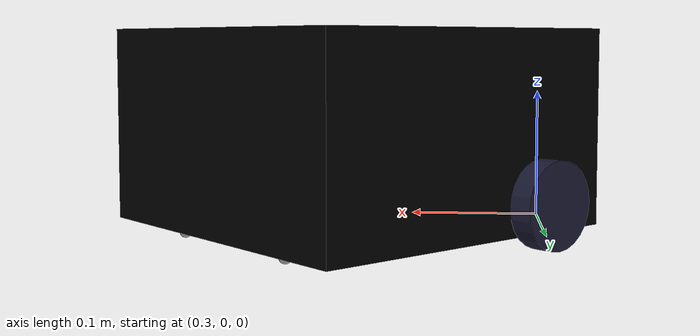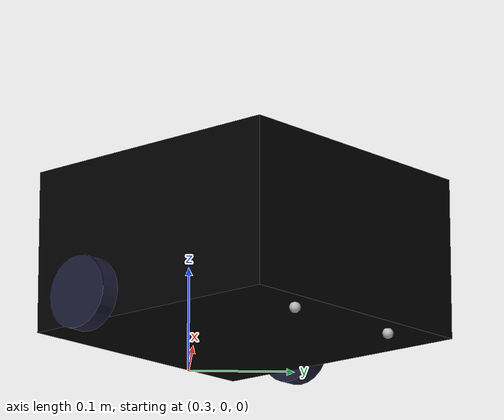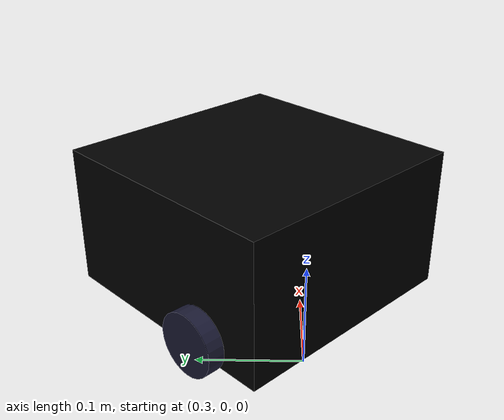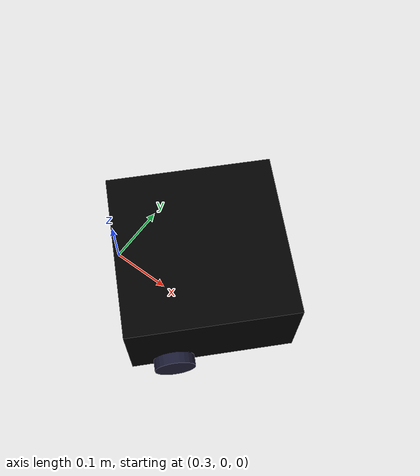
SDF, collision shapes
<?xml version="1.0" ?>
<sdf version="1.5">
  <model name="guide_robot">
  <pose>0.4 0.0 0.0 0.0 0.0 -2.35</pose>

    <link name="base_footprint"/>

    <link name="base_link">

      <inertial>
        <pose>-0.064 0 0.075 0 0 0</pose>
        <inertia>
          <ixx>4.2111447e-02</ixx>
          <ixy>0</ixy>
          <ixz>0</ixz>
          <iyy>4.2111447e-02</iyy>
          <iyz>0</iyz>
          <izz>7.5254874e-02</izz>
        </inertia>
        <mass>1.3729096e+00</mass>
      </inertial>

      <collision name="base_collision">
        <pose>-0.064 0 0.075 0 0 0</pose>
        <geometry>
          <box>
            <size>0.265 0.265 0.15</size>
          </box>
        </geometry>
      </collision>

      <visual name="base_visual">
        <pose>-0.064 0 0 0 0 0</pose>
        <geometry>
          <mesh>
            <uri>model://turtlebot3_common/meshes/waffle_base.dae</uri>
            <scale>0.001 0.001 0.002</scale>
          </mesh>
        </geometry>
        <material> <!-- base_link material -->
          <ambient>0 0 0 1</ambient>
          <diffuse>0 0 0 1</diffuse>
          <specular>0 0 0 0</specular>
          <emissive>0 1 0 1</emissive>
        </material> <!-- End base_link material -->
      </visual>
    </link>

    <link name="wheel_left_link">

      <inertial>
        <pose>0.0 0.144 0.023 -1.57 0 0</pose>
        <inertia>
          <ixx>1.1175580e-05</ixx>
          <ixy>-4.2369783e-11</ixy>
          <ixz>-5.9381719e-09</ixz>
          <iyy>1.1192413e-05</iyy>
          <iyz>-1.4400107e-11</iyz>
          <izz>2.0712558e-05</izz>
        </inertia>
        <mass>0.25</mass>
      </inertial>

      <collision name="wheel_left_collision">
        <pose>0.0 0.144 0.023 -1.57 0 0</pose>
        <geometry>
          <cylinder>
            <radius>0.033</radius>
            <length>0.018</length>
          </cylinder>
        </geometry>
        <surface>
          <!-- This friction pamareter don't contain reliable data!! -->
          <friction>
            <ode>
              <mu>1e10</mu>
              <mu2>1e10</mu2>
              <fdir1>0 0 0</fdir1>
              <slip1>0.0</slip1>
              <slip2>0.0</slip2>
            </ode>
          </friction>
        </surface>
      </collision>

      <visual name="wheel_left_visual">
        <pose>0.0 0.144 0.023 0 0 0</pose>
        <geometry>
          <mesh>
            <uri>model://turtlebot3_common/meshes/tire.dae</uri>
            <scale>0.001 0.001 0.001</scale>
          </mesh>
        </geometry>
        <material> <!-- wheel_left material -->
          <ambient>0.1 0.1 0.1 1</ambient>
          <diffuse>0.1 0.1 0.2 1</diffuse>
          <specular>0 0 0 0</specular>
          <emissive>0 0 0 1</emissive>
        </material> <!-- End wheel_left material -->
      </visual>
    </link>

    <link name="wheel_right_link">

      <inertial>
        <pose>0.0 -0.144 0.023 -1.57 0 0</pose>
        <inertia>
          <ixx>1.1175580e-05</ixx>
          <ixy>-4.2369783e-11</ixy>
          <ixz>-5.9381719e-09</ixz>
          <iyy>1.1192413e-05</iyy>
          <iyz>-1.4400107e-11</iyz>
          <izz>2.0712558e-05</izz>
        </inertia>
        <mass>0.25</mass>
      </inertial>

      <collision name="wheel_right_collision">
        <pose>0.0 -0.144 0.023 -1.57 0 0</pose>
        <geometry>
          <cylinder>
            <radius>0.033</radius>
            <length>0.018</length>
          </cylinder>
        </geometry>
        <surface>
          <!-- This friction pamareter don't contain reliable data!! -->
          <friction>
            <ode>
              <mu>1e10</mu>
              <mu2>1e10</mu2>
              <fdir1>0 0 0</fdir1>
              <slip1>0.0</slip1>
              <slip2>0.0</slip2>
            </ode>
          </friction>
        </surface>
      </collision>

      <visual name="wheel_right_visual">
        <pose>0.0 -0.144 0.023 0 0 0</pose>
        <geometry>
          <mesh>
            <uri>model://turtlebot3_common/meshes/tire.dae</uri>
            <scale>0.001 0.001 0.001</scale>
          </mesh>
        </geometry>
        <material> <!-- wheel_right material -->
          <ambient>0.1 0.1 0.1 1</ambient>
          <diffuse>0.1 0.1 0.2 1</diffuse>
          <specular>0 0 0 0</specular>
          <emissive>0 0 0 1</emissive>
        </material> <!-- End wheel_right material -->
      </visual>
    </link>

    <link name='caster_back_right_link'>
      <pose>-0.177 -0.064 -0.004 -1.57 0 0</pose>
      <inertial>
        <mass>0.005</mass>
        <inertia>
          <ixx>0.00001</ixx>
          <ixy>0.000</ixy>
          <ixz>0.000</ixz>
          <iyy>0.00001</iyy>
          <iyz>0.000</iyz>
          <izz>0.00001</izz>
        </inertia>
      </inertial>
      <collision name='collision'>
        <geometry>
          <sphere>
            <radius>0.005000</radius>
          </sphere>
        </geometry>
        <surface>
          <friction>
            <ode>
              <mu>1e-2</mu>
              <mu2>1e-2</mu2>
              <fdir1>0 0 0</fdir1>
              <slip1>0.0</slip1>
              <slip2>0.0</slip2>
            </ode>
          </friction>
          <contact>
            <ode>
              <soft_cfm>0</soft_cfm>
              <soft_erp>0.2</soft_erp>
              <kp>1e+5</kp>
              <kd>1</kd>
              <max_vel>0.01</max_vel>
              <min_depth>0.001</min_depth>
            </ode>
          </contact>
        </surface>
      </collision>
    </link>

    <link name='caster_back_left_link'>
      <pose>-0.177 0.064 -0.004 -1.57 0 0</pose>
      <inertial>
        <mass>0.005</mass>
        <inertia>
          <ixx>0.00001</ixx>
          <ixy>0.000</ixy>
          <ixz>0.000</ixz>
          <iyy>0.00001</iyy>
          <iyz>0.000</iyz>
          <izz>0.00001</izz>
        </inertia>
      </inertial>
      <collision name='collision'>
        <geometry>
          <sphere>
            <radius>0.005000</radius>
          </sphere>
        </geometry>
        <surface>
          <friction>
            <ode>
              <mu>1e-2</mu>
              <mu2>1e-2</mu2>
              <fdir1>0 0 0</fdir1>
              <slip1>0.0</slip1>
              <slip2>0.0</slip2>
            </ode>
          </friction>
          <contact>
            <ode>
              <soft_cfm>0</soft_cfm>
              <soft_erp>0.2</soft_erp>
              <kp>1e+5</kp>
              <kd>1</kd>
              <max_vel>0.01</max_vel>
              <min_depth>0.001</min_depth>
            </ode>
          </contact>
        </surface>
      </collision>
    </link>

    <joint name="base_joint" type="fixed">
      <parent>base_footprint</parent>
      <child>base_link</child>
      <pose>0.0 0.0 0.010 0 0 0</pose>
    </joint>

    <joint name="wheel_left_joint" type="revolute">
      <parent>base_link</parent>
      <child>wheel_left_link</child>
      <pose>0.0 0.144 0.023 -1.57 0 0</pose>
      <axis>
        <xyz>0 0 1</xyz>
      </axis>
    </joint>

    <joint name="wheel_right_joint" type="revolute">
      <parent>base_link</parent>
      <child>wheel_right_link</child>
      <pose>0.0 -0.144 0.023 -1.57 0 0</pose>
      <axis>
        <xyz>0 0 1</xyz>
      </axis>
    </joint>

    <joint name='caster_back_right_joint' type='ball'>
      <parent>base_link</parent>
      <child>caster_back_right_link</child>
    </joint>

    <joint name='caster_back_left_joint' type='ball'>
      <parent>base_link</parent>
      <child>caster_back_left_link</child>
    </joint>

    <plugin name="robot_diff_drive" filename="libgazebo_ros_diff_drive.so">

      <ros>
        <namespace>/guide_robot</namespace>
        <remapping>/tf:=/guide_robot/tf</remapping>
      </ros>

      <update_rate>30</update_rate>

      <!-- wheels -->
      <left_joint>wheel_left_joint</left_joint>
      <right_joint>wheel_right_joint</right_joint>

      <!-- kinematics -->
      <wheel_separation>0.287</wheel_separation>
      <wheel_diameter>0.066</wheel_diameter>

      <!-- limits -->
      <max_wheel_torque>20</max_wheel_torque>
      <max_wheel_acceleration>1.0</max_wheel_acceleration>

      <command_topic>cmd_vel</command_topic>

      <!-- output -->
      <publish_odom>true</publish_odom>
      <publish_odom_tf>true</publish_odom_tf>
      <publish_wheel_tf>false</publish_wheel_tf>

      <odometry_topic>odom</odometry_topic>
      <odometry_frame>odom</odometry_frame>
      <robot_base_frame>base_footprint</robot_base_frame>

    </plugin>

    <plugin name="robot_joint_state" filename="libgazebo_ros_joint_state_publisher.so">
      <ros>
        <namespace>/guide_robot</namespace>
        <remapping>~/out:=/guide_robot/joint_states</remapping>
      </ros>
      <update_rate>30</update_rate>
      <joint_name>wheel_left_joint</joint_name>
      <joint_name>wheel_right_joint</joint_name>
    </plugin>

  </model>

</sdf>
